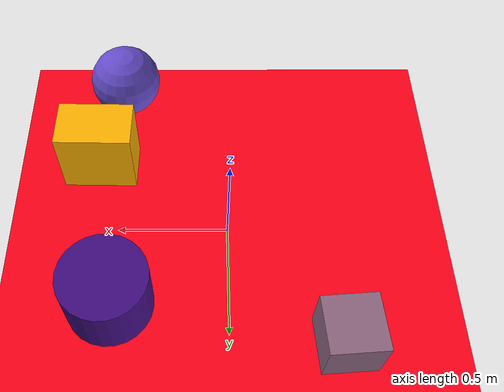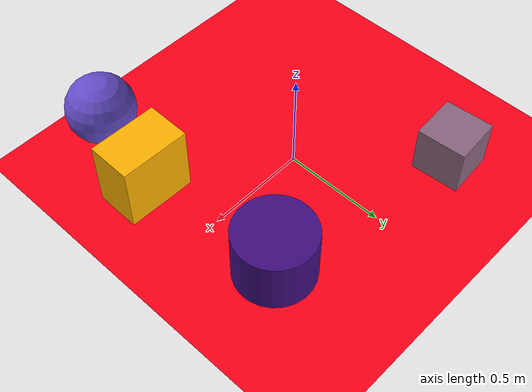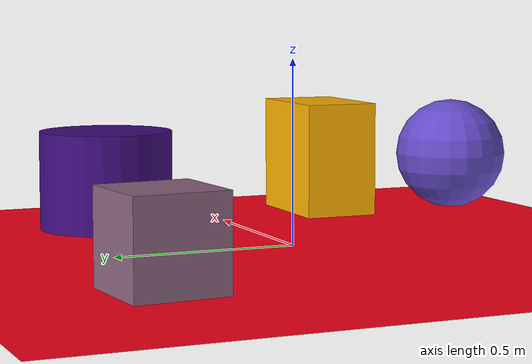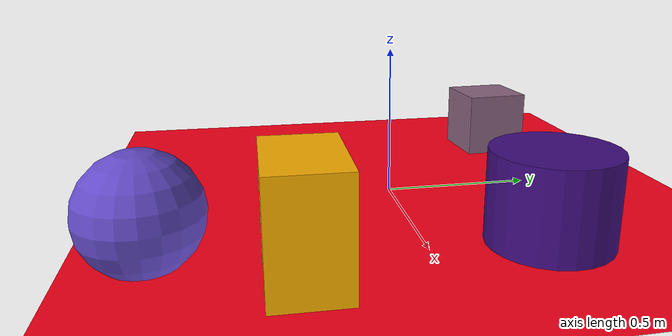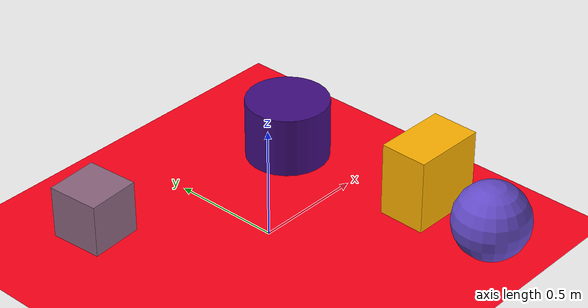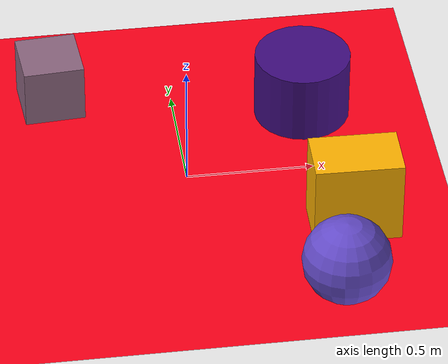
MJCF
<mujoco>
   <asset>
<texture type="skybox" builtin="gradient" rgb1="0.5 0.4 0.2" rgb2="0.2 0.6 0.4" width="256" height="256"/>
<texture name="flat_0" builtin="flat" rgb1="0.4 0.3 0.8" rgb2="0.4 0.3 0.8"  width="200" height="200"/>
<texture name="checker_1" builtin="checker" rgb1="0.2 0.1 0.9" rgb2="0.3 0.0 0.1" width="200" height="200"/>
<texture name="gradient_2" builtin="gradient" rgb1="0.8 0.6 0.5" rgb2="0.3 0.2 0.5" width="200" height="200"/>
<texture name="flat_3" builtin="flat" rgb1="1.0 0.7 0.0" rgb2="1.0 0.7 0.0"  width="200" height="200"/><material name="flat_0_mat" reflectance="0" texture="flat_0" texuniform="true"/>
<material name="checker_1_mat" reflectance="0" texrepeat="2 2" texture="checker_1" texuniform="false" />
<material name="gradient_2_mat" reflectance="0" texture="gradient_2" texuniform="true"/>
<material name="flat_3_mat" reflectance="0" texture="flat_3" texuniform="true"/>
   </asset>

   <worldbody>
      <light diffuse=".9 .9 .9" pos="0 0 3" dir="0 0 -1"/>
     <geom type="plane" size="1 1 0.1" rgba="1.0 0.0 0.1 1"/>
<geom type="sphere" pos="0.5 -0.77 0.17" size="0.17 0.17 0.17" material="flat_0_mat" euler="0 0 60" />
<geom type="cylinder" pos="0.51 0.36 0.14" size="0.19 0.14 0.14" material="checker_1_mat" euler="0 0 85" />
<geom type="box" pos="-0.48 0.54 0.12" size="0.12 0.12 0.12" material="gradient_2_mat" euler="0 0 4" />
<geom type="box" pos="0.6 -0.36 0.17" size="0.11 0.17 0.17" material="flat_3_mat" euler="0 0 89" /><camera euler="60 0 180" fovy="60" name="camera1" pos="-0.2 -1.5 1"></camera>   </worldbody>
</mujoco>
